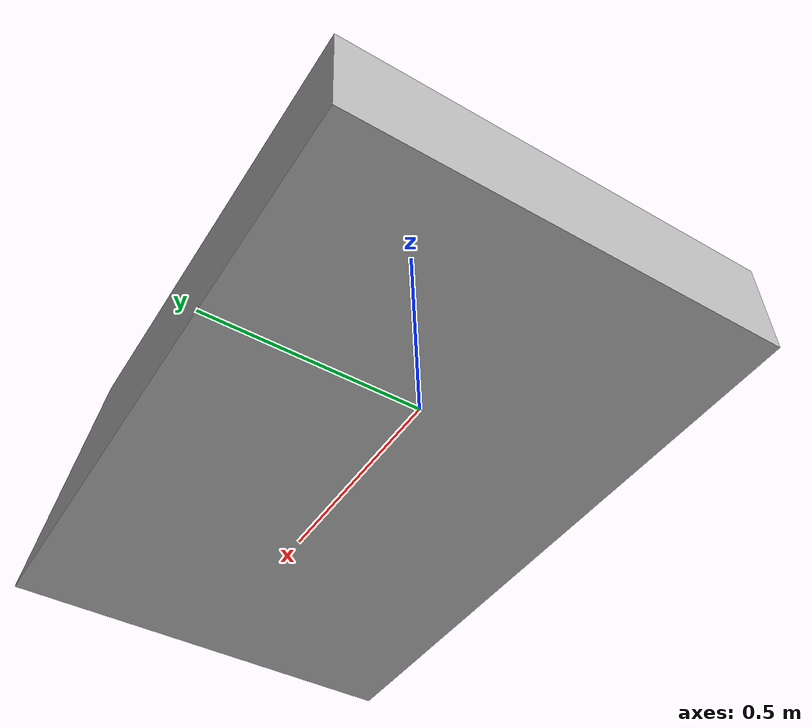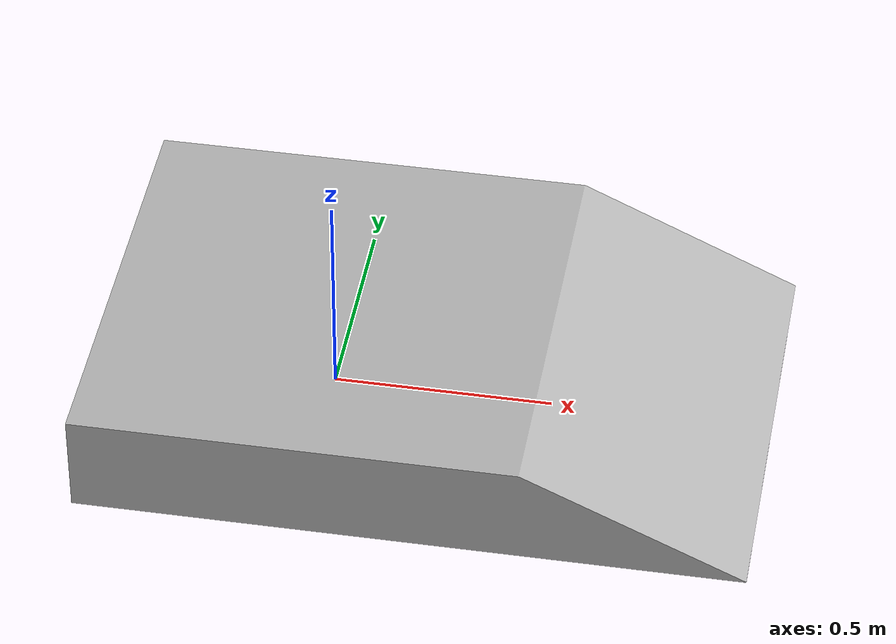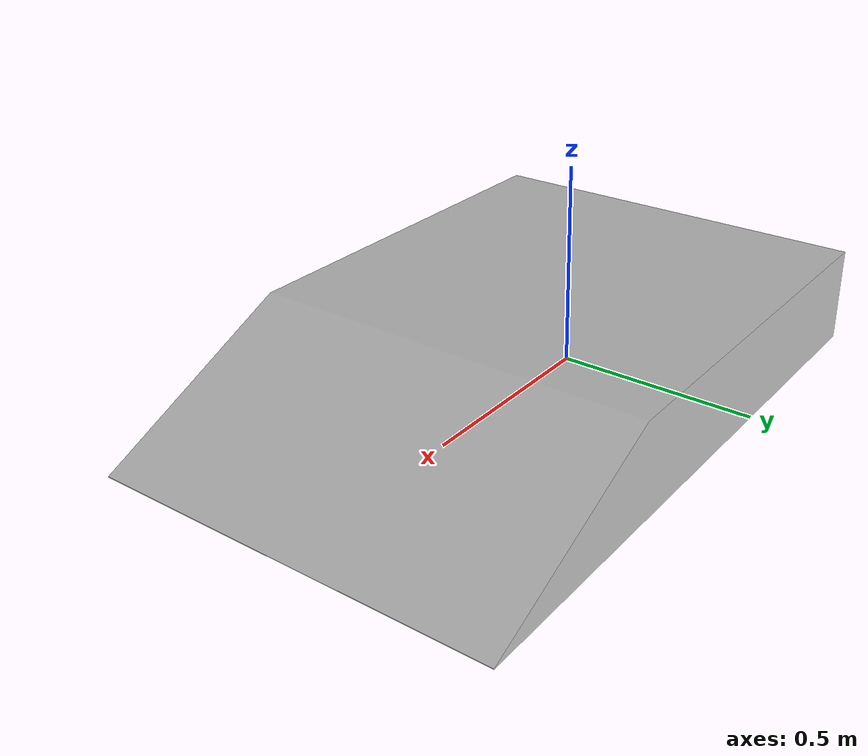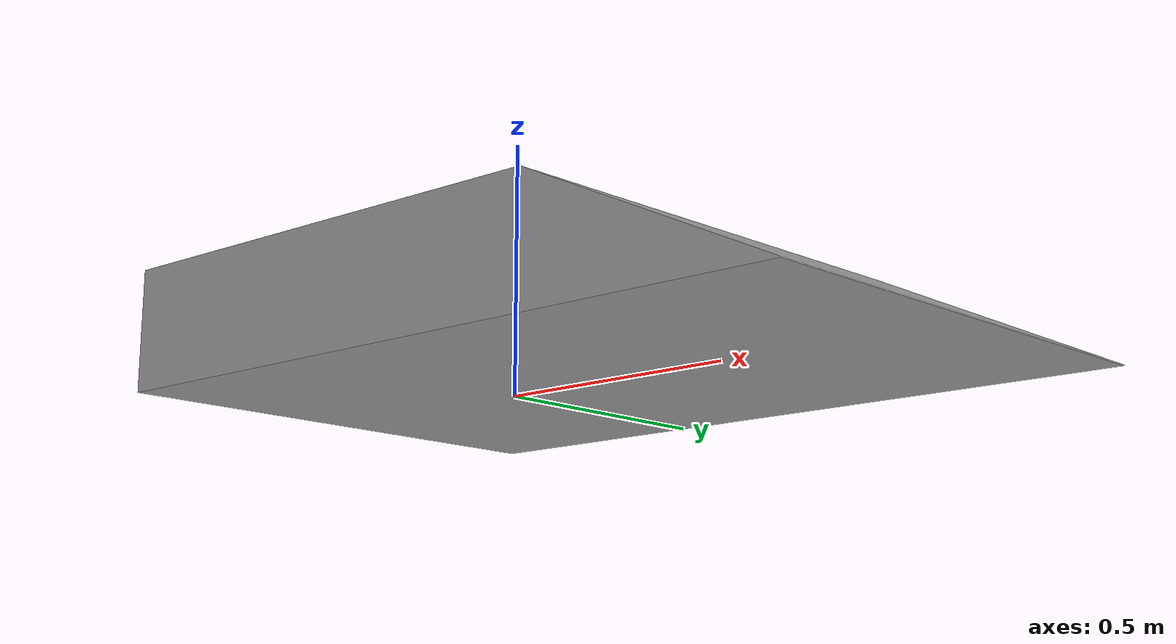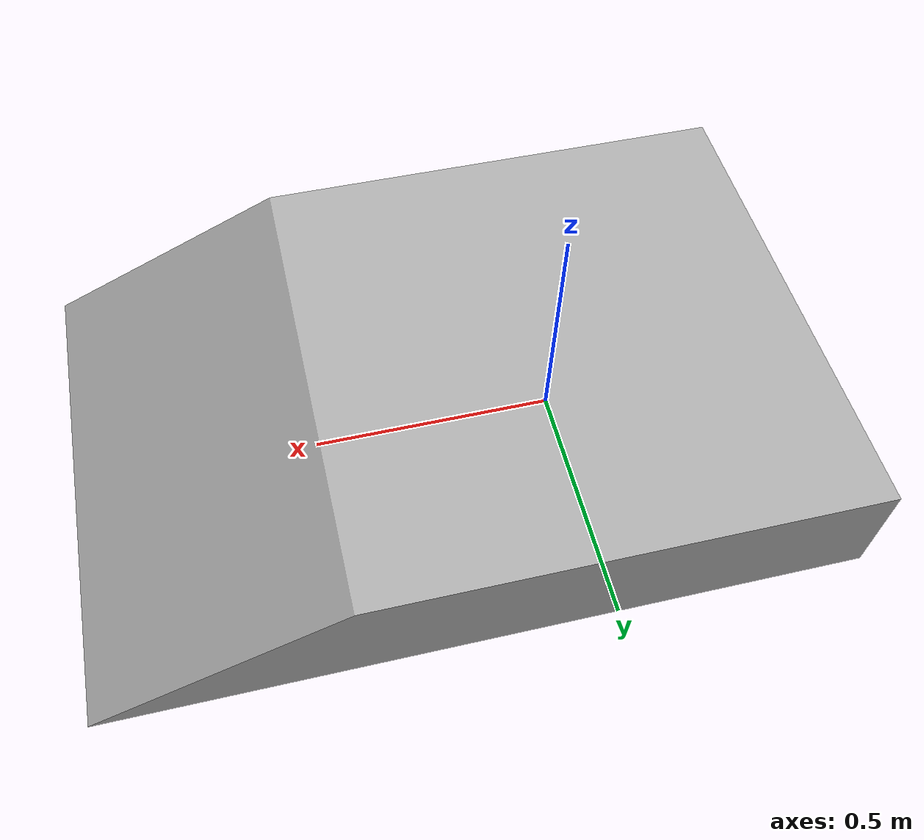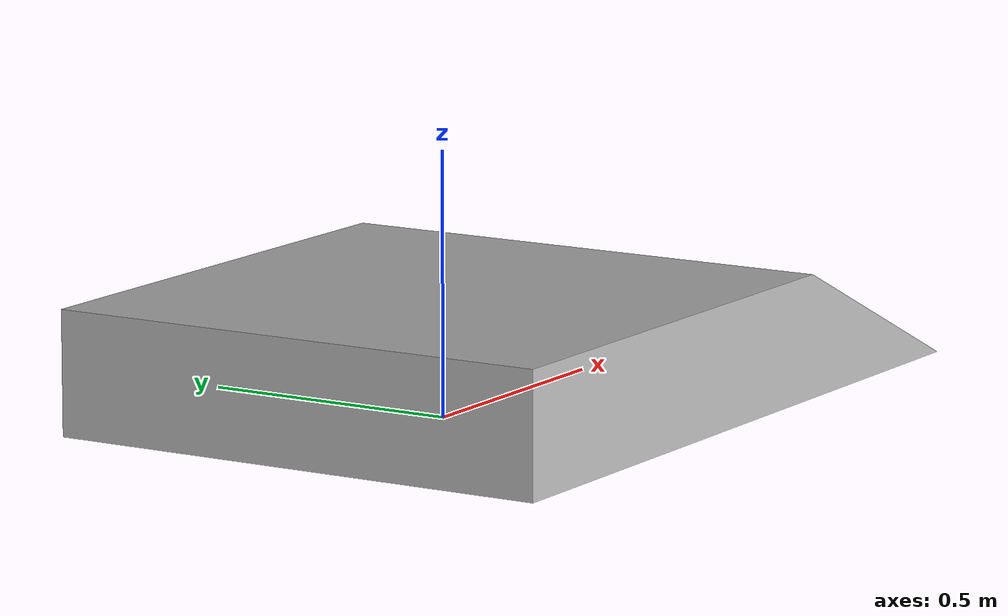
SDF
<?xml version="1.0" ?>
<!-- |    This document was autogenerated by xacro from /home/clynamen/teamdiana/gazebo-assets/models/definitions/ramp1/model.xacro | -->
<!-- |    EDITING THIS FILE BY HAND IS NOT RECOMMENDED                                 | -->
<sdf version="1.5">
  <model name="ramp1">
    <link name="ramp1_link">
      <inertial>
        <pose>0 0 0 0 0 0</pose>
        <mass>100</mass>
      </inertial>
      <collision name="ramp1_collision">
        <pose>0 0 0 0 0 0</pose>
        <geometry>
          <mesh>
            <uri>model://ramp1/meshes/ramp1.dae</uri>
            <scale>0.5 0.5 0.4</scale>
          </mesh>
        </geometry>
      </collision>
      <visual name="ramp1_visual">
        <pose>0 0 0 0 0 0</pose>
        <geometry>
          <mesh>
            <uri>model://ramp1/meshes/ramp1.dae</uri>
            <scale>0.5 0.5 0.4</scale>
          </mesh>
        </geometry>
      </visual>
      <self_collide>0</self_collide>
      <kinematic>0</kinematic>
      <gravity>1</gravity>
    </link>
    <pose>0 0 0 0 0 0</pose>
  </model>
</sdf>
